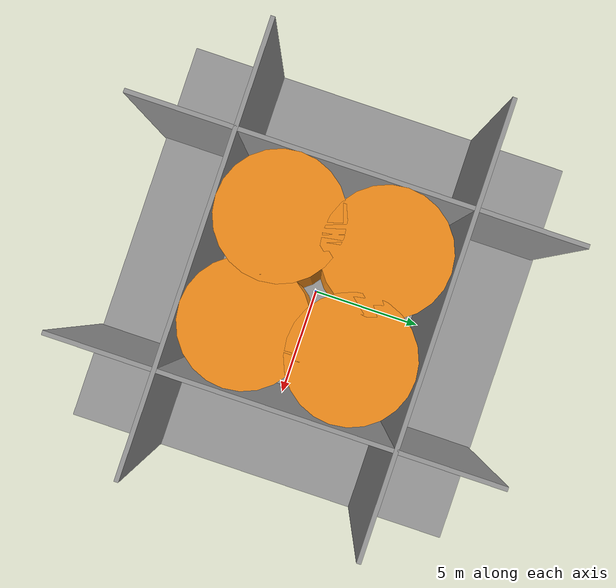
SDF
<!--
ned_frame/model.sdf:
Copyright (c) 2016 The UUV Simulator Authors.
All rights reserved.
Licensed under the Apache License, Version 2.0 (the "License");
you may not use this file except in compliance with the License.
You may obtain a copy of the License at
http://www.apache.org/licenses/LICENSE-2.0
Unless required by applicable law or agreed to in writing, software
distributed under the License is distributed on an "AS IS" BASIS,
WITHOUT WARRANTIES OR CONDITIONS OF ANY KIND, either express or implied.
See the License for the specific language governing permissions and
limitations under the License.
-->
<sdf version="1.4">
 <world name="default">
  <plugin name="ros_interface_plugin" filename="librotors_gazebo_ros_interface_plugin.so"/>
  <spherical_coordinates>
   <surface_model>EARTH_WGS84</surface_model>
   <latitude_deg>47.3667</latitude_deg>
   <longitude_deg>8.5500</longitude_deg>
   <elevation>500.0</elevation>
   <heading_deg>0</heading_deg>
  </spherical_coordinates>
  <physics type="ode">
   <ode>
    <solver><type>quick</type><iters>1000</iters><sor>1.3</sor></solver>
    <constraints>
     <cfm>0</cfm>
     <erp>0.2</erp>
     <contact_max_correcting_vel>100</contact_max_correcting_vel>
     <contact_surface_layer>0.001</contact_surface_layer>
    </constraints>
   </ode>
   <max_step_size>0.01</max_step_size>
   <real_time_factor>1</real_time_factor>
   <real_time_update_rate>100</real_time_update_rate>
   <gravity>0 0 -9.8</gravity>
  </physics>
  <light type="directional" name="sun1">
   <pose>50 0 150 0 0 0</pose>
   <diffuse>1 1 1 1</diffuse>
   <specular>.1 .1 .1 1</specular>
   <direction>0.3 0.3 -1</direction>
   <cast_shadows>false</cast_shadows>
  </light>
  <light type="directional" name="sun_diffuse">
   <pose>-50 0 -150 0 0 0</pose>
   <diffuse>0.6 0.6 0.6 1</diffuse>
   <specular>0 0 0 1</specular>
   <direction>-0.3 -0.3 -1</direction>
   <cast_shadows>false</cast_shadows>
  </light>
  <scene>
   <ambient>0.01 0.01 0.01 1.0</ambient>
   <sky><clouds><speed>12</speed></clouds></sky>
   <shadows>1</shadows>
   <fog>
    <color>0.1 0.2 0.3 1.0</color>
    <type>linear</type>
    <density>0.1</density>
    <start>10</start>
    <end>40</end>
   </fog>
  </scene>
  <include><uri>model://ned_frame</uri></include>
  <include><uri>model://grey_wall</uri><pose>0 -5.2 -3.0 0 0 0</pose><name>grey_wall_0</name></include>
  <include><uri>model://grey_wall</uri><pose>0 5.2 -3.0 0 0 0</pose><name>grey_wall_1</name></include>
  <include>
   <uri>model://grey_wall</uri>
   <pose>-5.2 0.0 -3.0 0 0 1.57079632679</pose>
   <name>grey_wall_2</name>
  </include>
  <include>
   <uri>model://grey_wall</uri>
   <pose>5.2 0.0 -3.0 0 0 1.57079632679</pose>
   <name>grey_wall_3</name>
  </include>
  <include>
   <uri>model://grey_wall</uri>
   <pose>0.0 1.5 -5.4 1.57079632679 0 0</pose>
   <name>grey_wall_4</name>
  </include>
  <include><uri>model://obstacle_1</uri><pose>2.0 2.0 2.5 0.0 0 0</pose><name>obstacle_1</name></include>
  <include><uri>model://obstacle_1</uri><pose>-2.0 -2.0 2.5 0.0 0 0</pose><name>obstacle_2</name></include>
  <include><uri>model://obstacle_1</uri><pose>2.0 -2.0 2.5 0.0 0 0</pose><name>obstacle_3</name></include>
  <include><uri>model://obstacle_1</uri><pose>-2.0 2.0 2.5 0.0 0 0</pose><name>obstacle_4</name></include>
  <plugin name="underwater_current_plugin" filename="libuuv_underwater_current_ros_plugin.so">
   <namespace>hydrodynamics</namespace>
   <constant_current>
    <topic>current_velocity</topic>
    <velocity><mean>0</mean><min>0</min><max>5</max><mu>0.0</mu><noiseAmp>0.0</noiseAmp></velocity>
    <horizontal_angle>
     <mean>0</mean>
     <min>-3.141592653589793238</min>
     <max>3.141592653589793238</max>
     <mu>0.0</mu>
     <noiseAmp>0.0</noiseAmp>
    </horizontal_angle>
    <vertical_angle>
     <mean>0</mean>
     <min>-3.141592653589793238</min>
     <max>3.141592653589793238</max>
     <mu>0.0</mu>
     <noiseAmp>0.0</noiseAmp>
    </vertical_angle>
   </constant_current>
  </plugin>
  <plugin name="sc_interface" filename="libuuv_sc_ros_interface_plugin.so"/>
 </world>
</sdf>

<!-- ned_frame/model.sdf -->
<sdf version='1.5'>
    <model name="world_ned">

      <pose>0 0 0 0 0 0</pose>
      <static>true</static>

      <link name="world_ned">
        <gravity>0</gravity>
        <pose>0 0 0 3.14159265359 0 1.5707963267948966</pose>

        <visual name="N_visual">
          <pose>0.25 0 0 1.5707963267948966 0 1.5707963267948966</pose>
          <geometry>
            <cylinder>
              <radius>0.01</radius>
              <length>0.5</length>
            </cylinder>
          </geometry>
          <material>
            <script>
              <uri>file://media/materials/scripts/gazebo.material</uri>
              <name>Gazebo/Red</name>
            </script>
          </material>
        </visual>

        <visual name="E_visual">
          <pose>0 0.25 0 1.5707963267948966 0 0</pose>
          <geometry>
            <cylinder>
              <radius>0.01</radius>
              <length>0.5</length>
            </cylinder>
          </geometry>
          <material>
            <script>
              <uri>file://media/materials/scripts/gazebo.material</uri>
              <name>Gazebo/Green</name>
            </script>
          </material>
        </visual>

        <visual name="D_visual">
          <pose>0 0 0.25 0 0 0</pose>
          <geometry>
            <cylinder>
              <radius>0.01</radius>
              <length>0.5</length>
            </cylinder>
          </geometry>
          <material>
            <script>
              <uri>file://media/materials/scripts/gazebo.material</uri>
              <name>Gazebo/Blue</name>
            </script>
          </material>
        </visual>
      </link>
    </model>
</sdf>

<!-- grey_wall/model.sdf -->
<sdf version="1.5">
  <model name="grey_wall">
    <static>true</static>
    <link name="link">
      <pose>0 0 1.4 0 0 0</pose>
      <collision name="collision">
        <geometry>
          <box>
            <size>20.0 0.2 20.0</size>
          </box>
        </geometry>
      </collision>
      <visual name="visual">
        <cast_shadows>false</cast_shadows>
        <geometry>
          <box>
            <size>20.0 0.2 20.0</size>
          </box>
        </geometry>
        <material>
          <script>
            <uri>model://grey_wall/materials/scripts</uri>
            <uri>model://grey_wall/materials/textures</uri>
            <name>vrc/grey_wall</name>
          </script>
        </material>
      </visual>
    </link>
  </model>
</sdf>

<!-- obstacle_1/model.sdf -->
<sdf version="1.5">
  <model name="obstacle_1">
    <static>false</static>
    <link name="link">
      <pose>0 0 0 0 0 0</pose>
      <collision name="collision">
        <geometry>
          <cylinder>
              <radius>2.4</radius>
              <length>25.0</length>
          </cylinder>
        </geometry>
      </collision>
      <visual name="visual">
        <geometry>
          <cylinder>
              <radius>2.4</radius>
              <length>25.0</length>
          </cylinder>
        </geometry>
	      <material>
            <script>
              <uri>file://media/materials/scripts/gazebo.material</uri>
              <name>Gazebo/Orange</name>
            </script>
        </material>
      </visual>
    </link>
  </model>
</sdf>
